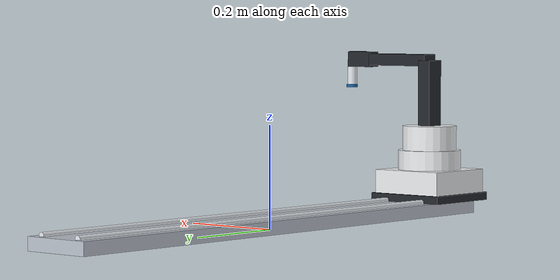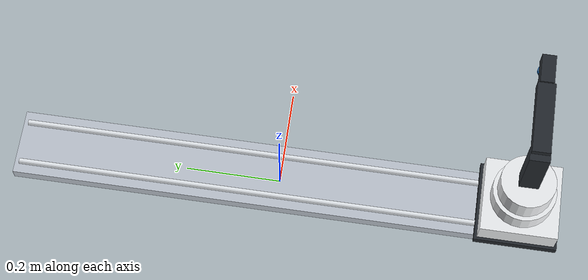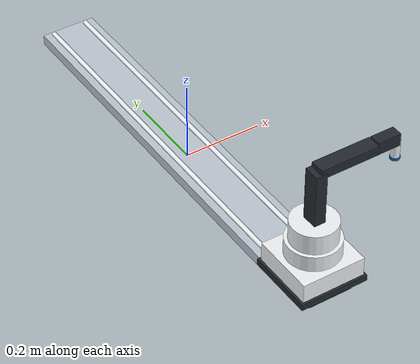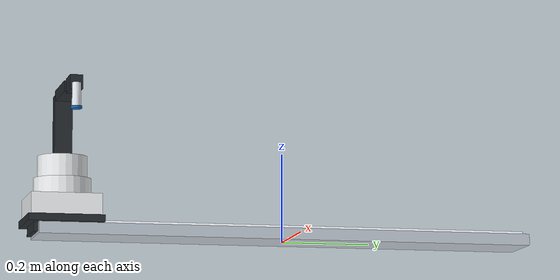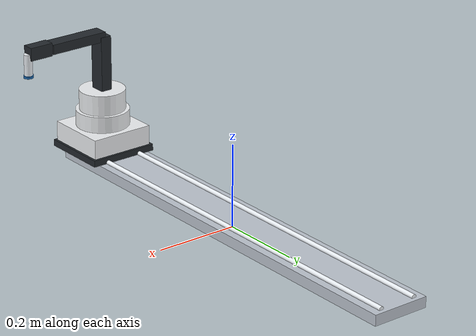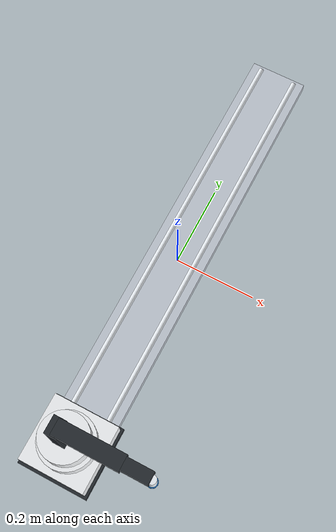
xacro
<?xml version="1.0" encoding="utf-8"?>
<!-- |    DOBOT MAGICIAN WITH SLIDING RAIL KIT - FULL SYSTEM XACRO MODEL               | -->
<!-- |    Combines Dobot Magician 4-DOF Robot Arm + 1-DOF Prismatic Linear Rail (L)    | -->
<!-- |    Total Degrees of Freedom: 5 DOF (Rail L + J1 + J2 + J3 + J4)                 | -->
<robot name="dobot_with_rail" xmlns:xacro="http://www.ros.org/wiki/xacro">

  <!-- ==================== CONSTANTS & PHYSICAL DIMENSIONS ==================== -->
  <xacro:property name="PI" value="3.1415926535897931"/>
  <xacro:property name="L1_BASE_HEIGHT" value="0.138"/>   <!-- 138 mm from base bottom to J2 axis -->
  <xacro:property name="L2_REAR_ARM"    value="0.135"/>   <!-- 135 mm upper arm length -->
  <xacro:property name="L3_FOREARM"     value="0.147"/>   <!-- 147 mm forearm length -->
  <xacro:property name="L4_WRIST"       value="0.059"/>   <!-- 59 mm wrist offset -->
  <xacro:property name="RAIL_TRAVEL"    value="1.000"/>   <!-- 1000 mm stroke -->

  <!-- ==================== COLOR PALETTE ==================== -->
  <material name="mat_rail_silver">
    <color rgba="0.75 0.78 0.82 1.0"/>
  </material>
  <material name="mat_steel_chrome">
    <color rgba="0.92 0.94 0.96 1.0"/>
  </material>
  <material name="mat_dobot_white">
    <color rgba="0.94 0.95 0.96 1.0"/>
  </material>
  <material name="mat_dobot_black">
    <color rgba="0.14 0.16 0.18 1.0"/>
  </material>
  <material name="mat_dobot_blue">
    <color rgba="0.094 0.392 0.671 1.0"/>
  </material>

  <!-- ==================== RAIL BASE LINK ==================== -->
  <link name="rail_base_link">
    <visual>
      <origin xyz="0 0 0.013" rpy="0 0 0"/>
      <geometry>
        <box size="0.140 1.120 0.026"/>
      </geometry>
      <material name="mat_rail_silver"/>
    </visual>
    <!-- Dual linear chrome rods (12mm dia) -->
    <visual>
      <origin xyz="0.045 0 0.028" rpy="${PI/2} 0 0"/>
      <geometry>
        <cylinder radius="0.006" length="1.100"/>
      </geometry>
      <material name="mat_steel_chrome"/>
    </visual>
    <visual>
      <origin xyz="-0.045 0 0.028" rpy="${PI/2} 0 0"/>
      <geometry>
        <cylinder radius="0.006" length="1.100"/>
      </geometry>
      <material name="mat_steel_chrome"/>
    </visual>
    <!-- Stepper Motor Enclosure -->
    <visual>
      <origin xyz="0 -0.535 0.030" rpy="0 0 0"/>
      <geometry>
        <box size="0.110 0.070 0.050"/>
      </geometry>
      <material name="mat_dobot_black"/>
    </visual>
    <collision>
      <origin xyz="0 0 0.020" rpy="0 0 0"/>
      <geometry>
        <box size="0.160 1.140 0.050"/>
      </geometry>
    </collision>
    <inertial>
      <origin xyz="0 0 0.015" rpy="0 0 0"/>
      <mass value="4.85"/>
      <inertia ixx="0.508" ixy="0.0" ixz="0.0" iyy="0.012" iyz="0.0" izz="0.518"/>
    </inertial>
  </link>

  <!-- ==================== RAIL PRISMATIC JOINT (L-AXIS) ==================== -->
  <joint name="rail_joint" type="prismatic">
    <parent link="rail_base_link"/>
    <child link="rail_carriage_link"/>
    <origin xyz="0 -0.500 0.026" rpy="0 0 0"/>
    <axis xyz="0 1 0"/>
    <limit lower="0.0" upper="${RAIL_TRAVEL}" effort="150.0" velocity="0.08"/>
    <dynamics damping="15.0" friction="5.0"/>
  </joint>

  <!-- ==================== CARRIAGE LINK ==================== -->
  <link name="rail_carriage_link">
    <visual>
      <origin xyz="0 0 0.008" rpy="0 0 0"/>
      <geometry>
        <box size="0.170 0.170 0.016"/>
      </geometry>
      <material name="mat_dobot_black"/>
    </visual>
    <collision>
      <origin xyz="0 0 0.008" rpy="0 0 0"/>
      <geometry>
        <box size="0.170 0.170 0.016"/>
      </geometry>
    </collision>
    <inertial>
      <origin xyz="0 0 0.008" rpy="0 0 0"/>
      <mass value="0.95"/>
      <inertia ixx="0.0024" ixy="0.0" ixz="0.0" iyy="0.0024" iyz="0.0" izz="0.0046"/>
    </inertial>
  </link>

  <!-- ==================== DOBOT ROBOT BASE ATTACHMENT ==================== -->
  <joint name="dobot_base_joint" type="fixed">
    <parent link="rail_carriage_link"/>
    <child link="dobot_base_link"/>
    <origin xyz="0 0 0.016" rpy="0 0 0"/>
  </joint>

  <!-- 1. DOBOT BASE LINK (Chân đế trắng) -->
  <link name="dobot_base_link">
    <visual>
      <origin xyz="0 0 0.024" rpy="0 0 0"/>
      <geometry>
        <box size="0.158 0.158 0.048"/>
      </geometry>
      <material name="mat_dobot_white"/>
    </visual>
    <visual>
      <origin xyz="0 0 0.067" rpy="0 0 0"/>
      <geometry>
        <cylinder radius="0.065" length="0.042"/>
      </geometry>
      <material name="mat_dobot_white"/>
    </visual>
    <collision>
      <origin xyz="0 0 0.045" rpy="0 0 0"/>
      <geometry>
        <cylinder radius="0.080" length="0.090"/>
      </geometry>
    </collision>
    <inertial>
      <origin xyz="0 0 0.04" rpy="0 0 0"/>
      <mass value="1.20"/>
      <inertia ixx="0.003" ixy="0.0" ixz="0.0" iyy="0.003" iyz="0.0" izz="0.004"/>
    </inertial>
  </link>

  <!-- 2. JOINT 1 (Trục xoay thân đế: -90° to +90°) -->
  <joint name="dobot_joint_1" type="revolute">
    <parent link="dobot_base_link"/>
    <child link="dobot_link_1"/>
    <origin xyz="0 0 0.088" rpy="0 0 0"/>
    <axis xyz="0 0 1"/>
    <limit lower="-${PI/2}" upper="${PI/2}" effort="10.0" velocity="5.5"/>
    <dynamics damping="0.5" friction="0.1"/>
  </joint>

  <link name="dobot_link_1">
    <visual>
      <origin xyz="0 0 0.025" rpy="0 0 0"/>
      <geometry>
        <cylinder radius="0.056" length="0.050"/>
      </geometry>
      <material name="mat_dobot_white"/>
    </visual>
    <collision>
      <origin xyz="0 0 0.025" rpy="0 0 0"/>
      <geometry>
        <cylinder radius="0.056" length="0.050"/>
      </geometry>
    </collision>
    <inertial>
      <origin xyz="0 0 0.025" rpy="0 0 0"/>
      <mass value="0.85"/>
      <inertia ixx="0.001" ixy="0.0" ixz="0.0" iyy="0.001" iyz="0.0" izz="0.001"/>
    </inertial>
  </link>

  <!-- 3. JOINT 2 (Trục vai / Cánh tay sau: 0° to 85°) -->
  <joint name="dobot_joint_2" type="revolute">
    <parent link="dobot_link_1"/>
    <child link="dobot_link_2"/>
    <origin xyz="0 0 0.050" rpy="0 0 0"/>
    <axis xyz="0 1 0"/>
    <limit lower="0.0" upper="${85 * PI / 180}" effort="12.0" velocity="5.5"/>
    <dynamics damping="0.5" friction="0.1"/>
  </joint>

  <link name="dobot_link_2">
    <visual>
      <origin xyz="0 0 ${L2_REAR_ARM/2}" rpy="0 0 0"/>
      <geometry>
        <box size="0.028 0.040 ${L2_REAR_ARM}"/>
      </geometry>
      <material name="mat_dobot_black"/>
    </visual>
    <collision>
      <origin xyz="0 0 ${L2_REAR_ARM/2}" rpy="0 0 0"/>
      <geometry>
        <box size="0.030 0.045 ${L2_REAR_ARM}"/>
      </geometry>
    </collision>
    <inertial>
      <origin xyz="0 0 ${L2_REAR_ARM/2}" rpy="0 0 0"/>
      <mass value="0.75"/>
      <inertia ixx="0.0015" ixy="0.0" ixz="0.0" iyy="0.0015" iyz="0.0" izz="0.0003"/>
    </inertial>
  </link>

  <!-- 4. JOINT 3 (Trục khuỷu / Cẳng tay trước: -10° to 90°) -->
  <joint name="dobot_joint_3" type="revolute">
    <parent link="dobot_link_2"/>
    <child link="dobot_link_3"/>
    <origin xyz="0 0 ${L2_REAR_ARM}" rpy="0 0 0"/>
    <axis xyz="0 1 0"/>
    <limit lower="-${10 * PI / 180}" upper="${PI/2}" effort="10.0" velocity="5.5"/>
    <dynamics damping="0.5" friction="0.1"/>
  </joint>

  <link name="dobot_link_3">
    <visual>
      <origin xyz="${L3_FOREARM/2} 0 0" rpy="0 0 0"/>
      <geometry>
        <box size="${L3_FOREARM} 0.036 0.024"/>
      </geometry>
      <material name="mat_dobot_black"/>
    </visual>
    <collision>
      <origin xyz="${L3_FOREARM/2} 0 0" rpy="0 0 0"/>
      <geometry>
        <box size="${L3_FOREARM} 0.036 0.024"/>
      </geometry>
    </collision>
    <inertial>
      <origin xyz="${L3_FOREARM/2} 0 0" rpy="0 0 0"/>
      <mass value="0.65"/>
      <inertia ixx="0.0002" ixy="0.0" ixz="0.0" iyy="0.0012" iyz="0.0" izz="0.0012"/>
    </inertial>
  </link>

  <!-- 5. JOINT 4 (Khớp cổ tay / Động cơ R quay đầu hút: -90° to +90°) -->
  <joint name="dobot_joint_4" type="revolute">
    <parent link="dobot_link_3"/>
    <child link="dobot_link_4"/>
    <origin xyz="${L3_FOREARM} 0 0" rpy="0 0 0"/>
    <axis xyz="0 0 1"/>
    <limit lower="-${PI/2}" upper="${PI/2}" effort="5.0" velocity="8.0"/>
    <dynamics damping="0.2" friction="0.05"/>
  </joint>

  <link name="dobot_link_4">
    <visual>
      <origin xyz="${L4_WRIST/2} 0 0" rpy="0 0 0"/>
      <geometry>
        <box size="${L4_WRIST} 0.028 0.032"/>
      </geometry>
      <material name="mat_dobot_black"/>
    </visual>
    <inertial>
      <origin xyz="${L4_WRIST/2} 0 0" rpy="0 0 0"/>
      <mass value="0.20"/>
      <inertia ixx="0.0001" ixy="0.0" ixz="0.0" iyy="0.0001" iyz="0.0" izz="0.0001"/>
    </inertial>
  </link>

  <!-- 6. END EFFECTOR (Giác hút khí nén / Suction Cup TCP) -->
  <joint name="dobot_suction_joint" type="fixed">
    <parent link="dobot_link_4"/>
    <child link="dobot_end_effector"/>
    <origin xyz="${L4_WRIST} 0 -0.0595" rpy="0 0 0"/>
  </joint>

  <link name="dobot_end_effector">
    <visual>
      <origin xyz="0 0 0.030" rpy="0 0 0"/>
      <geometry>
        <cylinder radius="0.010" length="0.055"/>
      </geometry>
      <material name="mat_steel_chrome"/>
    </visual>
    <visual>
      <origin xyz="0 0 0.003" rpy="0 0 0"/>
      <geometry>
        <cylinder radius="0.012" length="0.006"/>
      </geometry>
      <material name="mat_dobot_blue"/>
    </visual>
  </link>

</robot>
